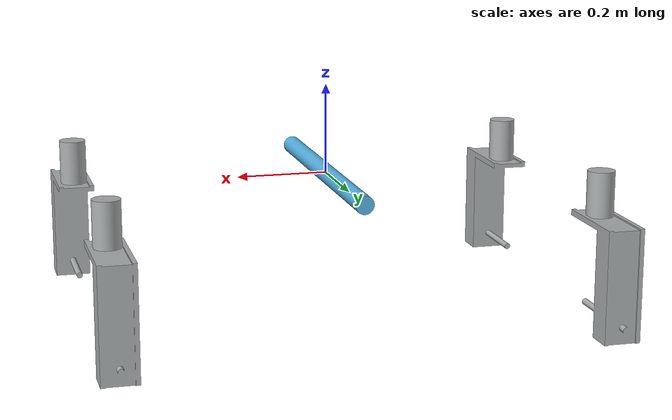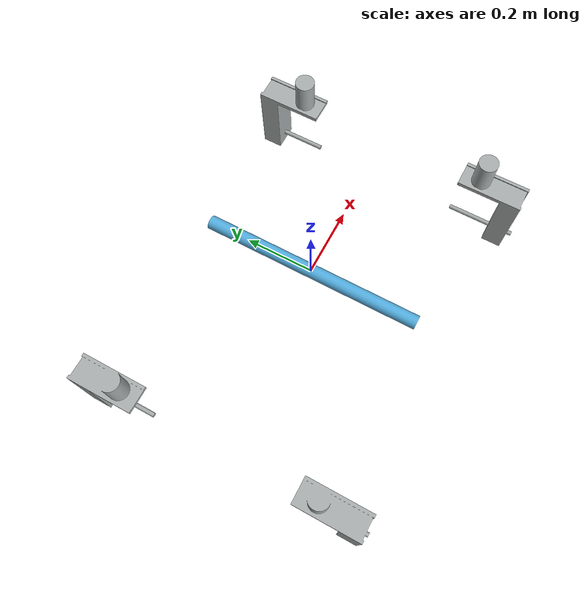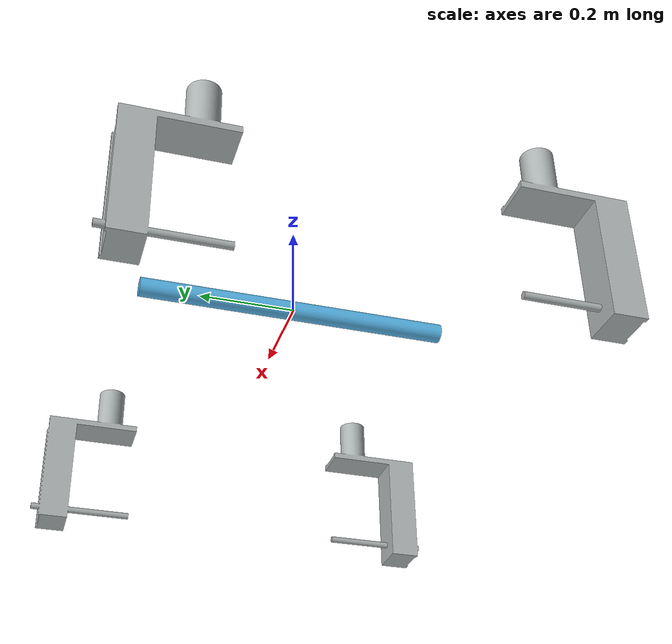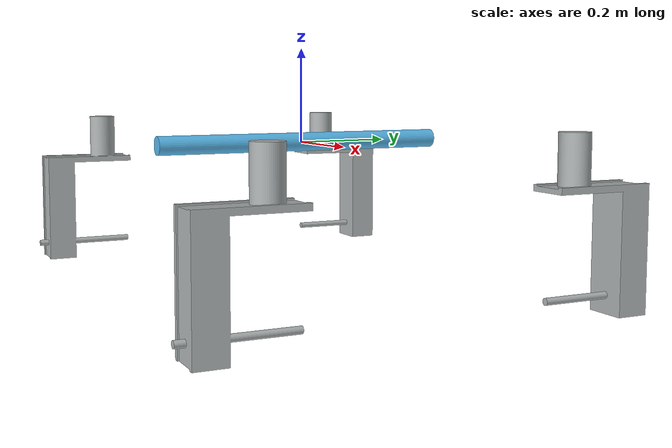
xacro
<?xml version="1.0"?>
<robot name="rover_s1" xmlns:xacro="http://playerstage.sourceforge.net/gazebo/xmlschema/#xacro">

  <xacro:arg name="name" default=""/>
  <xacro:property name="_name" value="$(arg name)"/>
  <xacro:if value="${_name != ''}">
    <xacro:property name="tf_prefix" value="${_name}/"/>
  </xacro:if>
  <xacro:if value="${_name == ''}">
    <xacro:property name="tf_prefix" value=""/>
  </xacro:if>

  <xacro:include filename="$(find rover_description)/urdf/suspension.urdf.xacro"/>
  <xacro:include filename="$(find rover_description)/urdf/rocker.urdf.xacro"/>
  <xacro:include filename="$(find rover_description)/urdf/wheel.urdf.xacro"/>

  <xacro:suspension xyz="0 0 0" tf_prefix="${tf_prefix}"/>
  <xacro:rocker name="left"  xyz="0 0.305 0"  side="1"  base_axii="suspension_base_link" tf_prefix="${tf_prefix}"/>
  <xacro:rocker name="right" xyz="0 -0.305 0" side="-1" base_axii="suspension_base_link" tf_prefix="${tf_prefix}"/>

  <xacro:wheel name="front_left"  x="0.53" y="0" z="0" side="1" base_rocker="left" tf_prefix="${tf_prefix}"/>
  <xacro:wheel name="front_right" x="0.53" y="0" z="0" side="-1" base_rocker="right" tf_prefix="${tf_prefix}"/>

  <xacro:wheel name="back_left"  x="-0.53" y="0" z="0" side="1"  base_rocker="left" tf_prefix="${tf_prefix}"/>
  <xacro:wheel name="back_right" x="-0.53" y="0" z="0" side="-1" base_rocker="right" tf_prefix="${tf_prefix}"/>

</robot>

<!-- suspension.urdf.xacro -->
<robot name="rover_s1" xmlns:xacro="http://playerstage.sourceforge.net/gazebo/xmlschema/#xacro">

  <xacro:macro name="suspension" params="xyz tf_prefix=''">

    <link name="${tf_prefix}base_link"/>

    <link name="${tf_prefix}suspension_base_link">
      <inertial>
        <origin xyz="0 0 0" rpy="0 0 0"/>
        <mass value="0.5"/>
        <inertia ixx="0.5" ixy="0" ixz="0" iyy="0.5" iyz="0" izz="1.0"/>
      </inertial>
      <visual>
        <origin xyz="0 -0.325 0"/>
        <geometry>
          <mesh filename="package://rover_description/meshes/suspension/central_axii.stl" scale="0.001 0.001 0.001"/>
        </geometry>
      </visual>
    </link>

    <joint name="${tf_prefix}suspension_base_joint" type="fixed">
      <origin xyz="${xyz}" rpy="0 0 0"/>
      <parent link="${tf_prefix}base_link"/>
      <child link="${tf_prefix}suspension_base_link"/>
    </joint>

  </xacro:macro>

    <material name="armor_plastic">
      <color rgba="0.2277128 0.2277128 0.2277128 0.8"/>
    </material>

    <material name="chassis">
      <color rgba="0.0981132 0.0981132 0.0981132 1.0"/>
    </material>

    <material name="cover_plastic">
      <color rgba="0.2548322 0.2548322 0.2548322 0.30000000000000004"/>
    </material>

    <material name="dark_plastic">
      <color rgba="0.0281746 0.0281746 0.0281746 1.0"/>
    </material>

    <material name="metal">
      <color rgba="0.0281746 0.028 0.0281746 1.0"/>
    </material>

    <material name="hit_detector">
      <color rgba="0.1697846 0.1697846 0.1697846 1.0"/>
    </material>

    <material name="led_light">
      <color rgba="0 0.7773585 0.7773583 1.0"/>
    </material>

    <material name="wheel_plastic">
      <color rgba="0.2739087 0.2739087 0.2739087 1.0"/>
    </material>

    <material name="EP_up.001">
      <color rgba="0.0284811 0.0284811 0.0284811 1.0"/>
    </material>

    <material name="steel">
      <color rgba="0.675 0.69453125 0.69453125 1.0"/>
    </material>

</robot>

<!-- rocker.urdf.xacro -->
<robot xmlns:xacro="http://playerstage.sourceforge.net/gazebo/xmlschema/#xacro">

  <xacro:macro name="rocker" params="name xyz side base_axii tf_prefix=''">

    <link name="${tf_prefix}${name}_rocker_link">
      <inertial>
        <origin xyz="0 0 0" rpy="0 0 0"/>
        <mass value="1.0"/>
        <inertia ixx="0.01" ixy="0" ixz="0" iyy="0.01" iyz="0" izz="0.01"/>
      </inertial>
      <visual>
        <origin xyz="-0.55 ${0.02 * side} -0.04" rpy="0 0 0"/>
        <geometry>
          <mesh filename="package://rover_description/meshes/suspension/rocker.stl" scale="0.001 ${0.001 * side} 0.001"/>
        </geometry>
        <material name="steel"/>
      </visual>
    </link>

    <joint name="${tf_prefix}${name}_rocker_joint" type="continuous">
      <origin xyz="${xyz}" rpy="0 0 0"/>
      <parent link="${tf_prefix}${base_axii}"/>
      <child link="${tf_prefix}${name}_rocker_link"/>
      <axis xyz="0 1.0 0"/>
      <limit effort="0" velocity="0"/>
    </joint>

  </xacro:macro>

</robot>

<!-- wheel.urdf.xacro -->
<robot xmlns:xacro="http://playerstage.sourceforge.net/gazebo/xmlschema/#xacro">

  <xacro:macro name="wheel" params="name x y z side base_rocker tf_prefix=''">

    <link name="${tf_prefix}${name}_wheel_mount_link">
      <inertial>
        <origin xyz="0 ${-0.145 * side} 0" rpy="0 0 0"/>
        <mass value="0.162"/>
        <inertia ixx="0.0002" ixy="0" ixz="0" iyy="0.00012" iyz="0" izz="0.00012"/>
      </inertial>
      <visual>
        <origin xyz="0 ${-0.06 * side} -0.269" rpy="0 0 0"/>
        <geometry>
          <mesh filename="package://rover_description/meshes/suspension/wheel_mount.stl" scale="0.001 ${0.001 * side} 0.001"/>
        </geometry>
        <material name="steel"/>
      </visual>
    </link>

    <joint name="${tf_prefix}${name}_wheel_mount_joint" type="revolute">
      <origin xyz="${x} ${y} ${z}" rpy="0 0 0"/>
      <parent link="${tf_prefix}${base_rocker}_rocker_link"/>
      <child link="${tf_prefix}${name}_wheel_mount_link"/>
      <axis xyz="0 0 1"/>  <!-- вертикальна вісь (Z) для steering -->
      <limit lower="${-pi/4}" upper="${pi/3}" effort="10" velocity="1"/>
    </joint>

    <link name="${tf_prefix}${name}_wheel_link">
      <visual>
        <origin xyz="0 ${-0.06 * side} 0" rpy="${-pi/2} 0 0"/> <!-- ${0.12 * side} -->
        <geometry>
          <mesh filename="package://rover_description/meshes/suspension/wheel.stl" scale="0.001 0.001 ${side * 0.001}"/>
        </geometry>
        <material name="wheel_plastic"/>
      </visual>
      <collision>
        <origin xyz="0 0 0" rpy="${pi/2 * side} 0 0"/>
        <geometry>
          <cylinder radius="0.15" length="0.12"/>
        </geometry>
        <material name="dark_plastic"/>
      </collision>
    </link>

    <joint name="${tf_prefix}${name}_wheel_joint" type="continuous">
      <origin xyz="0 0 -0.25" rpy="0 0 0"/>
      <parent link="${tf_prefix}${name}_wheel_mount_link"/>
      <child link="${tf_prefix}${name}_wheel_link"/>
      <axis xyz="0 1.0 0"/> <!-- вісь обертання колеса (Y) для rolling -->
    </joint>

  </xacro:macro>

</robot>
